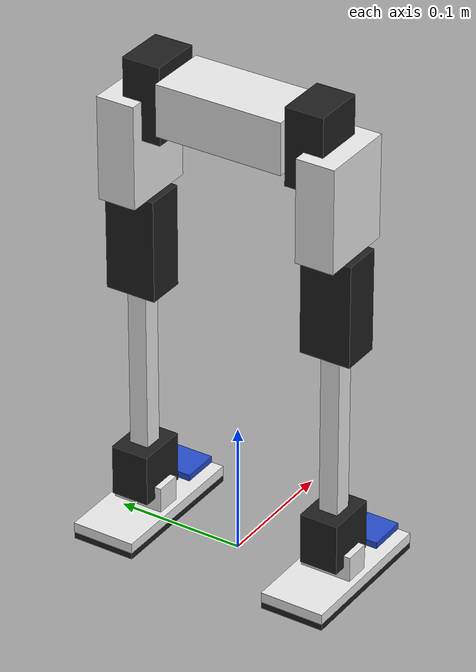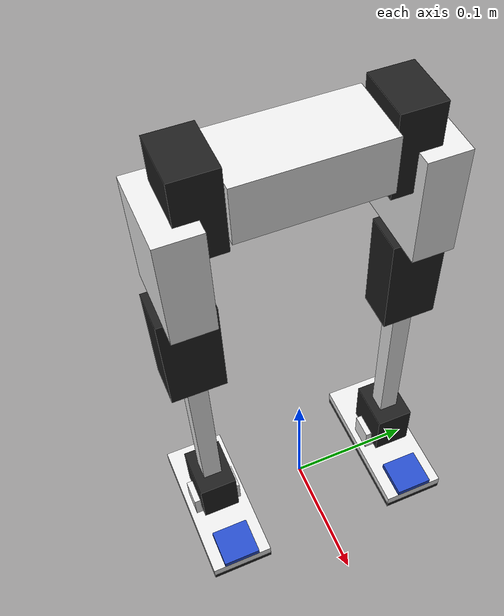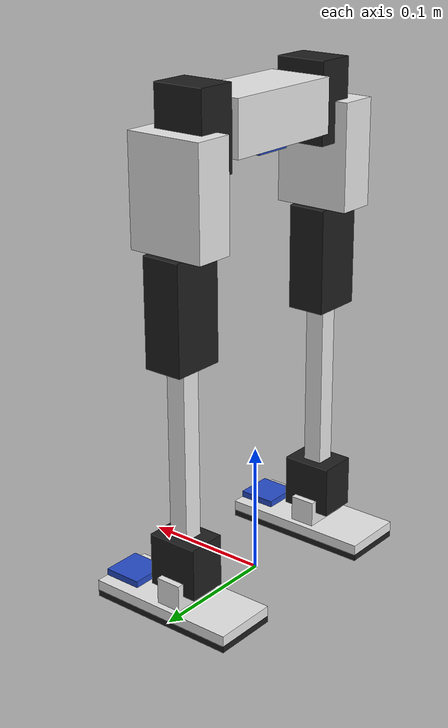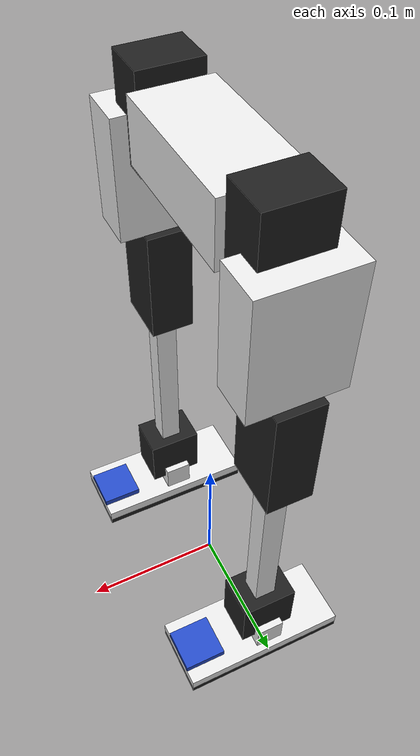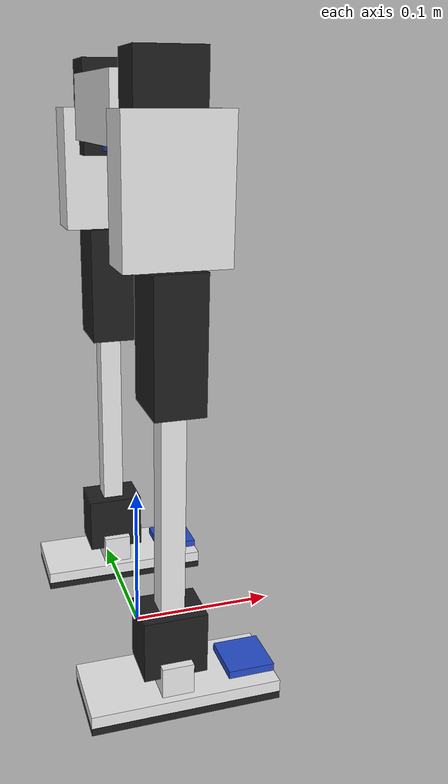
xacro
<?xml version="1.0"?>
<robot xmlns:xacro="http://www.ros.org/wiki/xacro">

  <xacro:include filename="$(find robotv1_description)/urdf/leg.xacro"/>
  <xacro:include filename="$(find robotv1_description)/urdf/lower_body.gazebo"/>

  <xacro:property name="lx_pelvis" value="0.05"/>
  <xacro:property name="ly_pelvis" value="0.10"/>
  <xacro:property name="lz_pelvis" value="0.04"/>
  <xacro:property name="lx_imu_link" value="0.03"/>
  <xacro:property name="ly_imu_link" value="0.03"/>
  <xacro:property name="lz_imu_link" value="0.005"/>

  <xacro:property name="pos_pelvis" value="${lz_u1 + lz_u2+ lz_l0 + lz_l1 + lz_l2/2 + lz_l3 + lz_l4}"/>

  <link name="dummy" />
  <joint name="dummy_to_pelvis" type="fixed">
    <origin xyz="0 0 ${pos_pelvis}" rpy="0 0 0"/>
    <parent link="dummy" />
    <child link="pelvis" />
  </joint>

  <link name="pelvis" >
    <visual>
      <origin xyz="0 0 0" rpy="0 0 0" />
      <geometry>
        <box size="${lx_pelvis} ${ly_pelvis} ${lz_pelvis}"/>
      </geometry>
      <material name="white"/>
    </visual>
    <inertial>
      <origin xyz="0 0 0" rpy="0 0 0" />
      <xacro:box_inertia lenx="${lx_pelvis}" leny="${ly_pelvis}" lenz="${lz_pelvis}"/>
    </inertial>
    <collision>
      <origin xyz="0 0 0" rpy="0 0 0" />
      <geometry>
        <box size="${lx_pelvis} ${ly_pelvis} ${lz_pelvis}"/>
      </geometry>
    </collision>
  </link>

  <joint name="pelvis_to_imu_link" type="fixed">
    <origin xyz="0 0 ${-lz_pelvis/2.0}" rpy="0 0 0" />
    <parent link="pelvis"/>
    <child link="imu_link_pelvis"/>
  </joint>

  <link name="imu_link_pelvis" >
    <visual>
      <origin xyz="0 0 ${-lz_imu_link/2.0}" rpy="0 0 0" />
      <geometry>
        <box size="${lx_imu_link} ${ly_imu_link} ${lz_imu_link}"/>
      </geometry>
      <material name="blue"/>
    </visual>
    <inertial>
      <origin xyz="0 0 ${lz_imu_link/2.0}" rpy="0 0 0" />
      <xacro:box_inertia lenx="${lx_imu_link}" leny="${ly_imu_link}" lenz="${lz_imu_link}"/>
    </inertial>
    <collision>
      <origin xyz="0 0 0" rpy="0 0 0" />
      <geometry>
        <box size="${lx_imu_link} ${ly_imu_link} ${lz_imu_link}"/>
      </geometry>
    </collision>
  </link>

  <xacro:leg prefix="LLEG" reflect="1" />
  <xacro:leg prefix="RLEG" reflect="-1" />

</robot>

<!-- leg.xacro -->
<!-- Revolute-Revolute Manipulator -->
<robot xmlns:xacro="http://www.ros.org/wiki/xacro" >
  <!--Constant for the robotv1-->
  <xacro:property name="joint_friction" value="0.015"/>
  <xacro:property name="joint_damping" value="0.03"/>
  <xacro:property name="joint_effort" value="10.0"/>
  <xacro:property name="joint_vel" value="6.0"/>

  <xacro:property name="lx_u0" value="0.04"/>
  <xacro:property name="ly_u0" value="0.03"/>
  <xacro:property name="lz_u0" value="0.06"/>

  <xacro:property name="lx_u1" value="0.06"/>
  <xacro:property name="ly_u1" value="0.03"/>
  <xacro:property name="lz_u1" value="0.08"/>

  <xacro:property name="lx_u2" value="0.03"/>
  <xacro:property name="ly_u2" value="0.04"/>
  <xacro:property name="lz_u2" value="0.08"/>

  <xacro:property name="lx_l0" value="0.015"/>
  <xacro:property name="ly_l0" value="0.015"/>
  <xacro:property name="lz_l0" value="0.13"/>

  <xacro:property name="lx_l1" value="0.04"/>
  <xacro:property name="ly_l1" value="0.03"/>
  <xacro:property name="lz_l1" value="0.04"/>

  <xacro:property name="lx_l2" value="0.02"/>
  <xacro:property name="ly_l2" value="0.04"/>
  <xacro:property name="lz_l2" value="0.02"/>

  <xacro:property name="lx_l3" value="0.12"/>
  <xacro:property name="ly_l3" value="0.05"/>
  <xacro:property name="lz_l3" value="0.008"/>

  <xacro:property name="lx_l4" value="0.12"/>
  <xacro:property name="ly_l4" value="0.05"/>
  <xacro:property name="lz_l4" value="0.005"/>

  <xacro:property name="lx_imu_link" value="0.03"/>
  <xacro:property name="ly_imu_link" value="0.03"/>
  <xacro:property name="lz_imu_link" value="0.005"/>

  <xacro:include filename="$(find robotv1_description)/urdf/leg.gazebo" />
  <xacro:include filename="$(find robotv1_description)/urdf/utilities.xacro"/>

  <xacro:macro name="leg" params="prefix reflect" >
    <joint name="${prefix}_H0" type="revolute" >
      <parent link="pelvis"/>
      <child link="${prefix}_u0"/>
      <origin xyz="0 ${ly_pelvis*reflect/2} 0"/>
      <axis xyz="0 1 0"/>
      <dynamics damping="${joint_damping}" friction="${joint_friction}"/>
      <limit effort="${joint_effort}" velocity="${joint_vel}" lower="${-pi/2}" upper="${pi/2}" />
    </joint>

    <transmission name="${prefix}_H0_tran">
      <type>transmission_interface/SimpleTransmission</type>
      <joint name="${prefix}_H0">
        <hardwareInterface>hardware_interface/EffortJointInterface</hardwareInterface>
      </joint>
      <actuator name="${prefix}_H0_motor">
        <hardwareInterface>hardware_interface/EffortJointInterface</hardwareInterface>
        <mechanicalReduction>1</mechanicalReduction>
      </actuator>
    </transmission>

    <link name="${prefix}_u0" >
      <visual>
        <origin xyz="0 ${ly_u0*reflect/2} 0" rpy="0 0 0"/>
        <geometry>
          <box size="${lx_u0} ${ly_u0} ${lz_u0}"/>
        </geometry>
        <material name="black"/>
      </visual>
      <inertial>
        <origin xyz="0 ${ly_u0*reflect/2} 0" rpy="0 0 0"/>
        <xacro:box_inertia  lenx="${lx_u0}" leny="${ly_u0}" lenz="${lz_u0}" />
      </inertial>
      <collision>
        <origin xyz="0 ${ly_u0*reflect/2} 0" rpy="0 0 0"/>
        <geometry>
          <box size="${lx_u0} ${ly_u0} ${lz_u0}"/>
        </geometry>
      </collision>
    </link>

    <joint name="${prefix}_H1" type="revolute" >
       <parent link="${prefix}_u0"/>
       <child link="${prefix}_u1"/>
       <origin xyz= "0 ${ly_u0*reflect} 0"/>
       <axis xyz="1 0 0"/>
       <dynamics damping="${joint_damping}" friction="${joint_friction}"/>
       <limit effort="${joint_effort}" velocity="${joint_vel}" lower="${-pi/4}" upper="${pi/4}" />
    </joint>
    <transmission name="${prefix}_H1_tran">
      <type>transmission_interface/SimpleTransmission</type>
      <joint name="${prefix}_H1">
        <hardwareInterface>hardware_interface/EffortJointInterface</hardwareInterface>
      </joint>
      <actuator name="${prefix}_H1_motor">
        <hardwareInterface>hardware_interface/EffortJointInterface</hardwareInterface>
        <mechanicalReduction>1</mechanicalReduction>
      </actuator>
    </transmission>

    <link name="${prefix}_u1" >
      <visual>
        <origin xyz="0 0 ${-lz_u1/2 }" rpy="0 0 0"/>
        <geometry>
          <box size="${lx_u1} ${ly_u1} ${lz_u1}"/>
        </geometry>
        <material name="white"/>
      </visual>
      <inertial>
        <origin xyz="0 0 ${-lz_u1/2 }" rpy="0 0 0"/>
        <xacro:box_inertia  lenx="${lx_u1}" leny="${ly_u1}" lenz="${lz_u1}" />
      </inertial>
      <collision>
        <origin xyz="0 0 ${-1*lz_u1/2 }" rpy="0 0 0"/>
        <geometry>
          <box size="${lx_u1} ${ly_u1} ${lz_u1}"/>
        </geometry>
      </collision>
    </link>

    <joint name="${prefix}_H2" type="revolute" >
      <parent link="${prefix}_u1"/>
      <child link="${prefix}_u2"/>
      <origin xyz="0 0 ${-lz_u1}"/>
      <axis xyz="0 0 1"/>
      <dynamics damping="${joint_damping}" friction="${joint_friction}"/>
      <limit effort="${joint_effort}" velocity="${joint_vel}" lower="${-pi/4}" upper="${pi/4}" />
    </joint>

    <transmission name="${prefix}_H2_tran">
      <type>transmission_interface/SimpleTransmission</type>
      <joint name="${prefix}_H2">
        <hardwareInterface>hardware_interface/EffortJointInterface</hardwareInterface>
      </joint>
      <actuator name="${prefix}_H2_motor">
        <hardwareInterface>hardware_interface/EffortJointInterface</hardwareInterface>
        <mechanicalReduction>1</mechanicalReduction>
      </actuator>
    </transmission>

    <link name="${prefix}_u2" >
      <visual>
        <origin xyz="0 0 ${-lz_u2/2}" rpy="0 0 0"/>
        <geometry>
          <box size="${lx_u2} ${ly_u2} ${lz_u2}"/>
        </geometry>
        <material name="black"/>
      </visual>
      <inertial>
        <origin xyz="0 0 ${-lz_u2/2}" rpy="0 0 0"/>
        <xacro:box_inertia  lenx="${lx_u2}" leny="${ly_u2}" lenz="${lz_u2}" />
      </inertial>
      <collision>
        <origin xyz="0 0 ${-lz_u2/2}" rpy="0 0 0"/>
        <geometry>
          <box size="${lx_u2} ${ly_u2} ${lz_u2}"/>
        </geometry>
      </collision>
    </link>

    <joint name="${prefix}_K0" type="revolute" >
      <parent link="${prefix}_u2"/>
      <child link="${prefix}_l0"/>
      <origin xyz="0 0 ${-lz_u2}"/>
      <axis xyz="0 1 0"/>
      <dynamics damping="${joint_damping}" friction="${joint_friction}"/>
      <limit effort="${joint_effort}" velocity="${joint_vel}" lower="0" upper="${7*pi/8}" />
    </joint>

    <transmission name="${prefix}_K0_tran">
      <type>transmission_interface/SimpleTransmission</type>
      <joint name="${prefix}_K0">
        <hardwareInterface>hardware_interface/EffortJointInterface</hardwareInterface>
      </joint>
      <actuator name="${prefix}_K0_motor">
        <hardwareInterface>hardware_interface/EffortJointInterface</hardwareInterface>
        <mechanicalReduction>1</mechanicalReduction>
      </actuator>
    </transmission>

    <link name="${prefix}_l0" >
      <visual>
        <origin xyz="0 0 ${-lz_l0/2}" rpy="0 0 0"/>
        <geometry>
          <box size="${lx_l0} ${ly_l0} ${lz_l0}"/>
        </geometry>
        <material name="white"/>
      </visual>
      <inertial>
        <origin xyz="0 0 ${-lz_l0/2}" rpy="0 0 0"/>
        <xacro:box_inertia  lenx="${lx_l0}" leny="${ly_l0}" lenz="${lz_l0}" />
      </inertial>
      <collision>
       <origin xyz="0 0 ${-lz_l0/2}" rpy="0 0 0"/>
       <geometry>
         <box size="${lx_l0} ${ly_l0} ${lz_l0}"/>
       </geometry>
      </collision>
    </link>

    <joint name="${prefix}_A0" type="revolute" >
      <parent link="${prefix}_l0"/>
      <child link="${prefix}_l1"/>
      <origin xyz="0 0 ${-lz_l0}" rpy="0 0 0"/>
      <axis xyz="0 1 0"/>
      <dynamics damping="${joint_damping}" friction="${joint_friction}"/>
      <limit effort="${joint_effort}" velocity="${joint_vel}" lower="${-pi/2}" upper="${pi/2}" />
    </joint>

    <transmission name="${prefix}_A0_tran">
      <type>transmission_interface/SimpleTransmission</type>
      <joint name="${prefix}_A0">
        <hardwareInterface>hardware_interface/EffortJointInterface</hardwareInterface>
      </joint>
      <actuator name="${prefix}_A0_motor">
        <hardwareInterface>hardware_interface/EffortJointInterface</hardwareInterface>
        <mechanicalReduction>1</mechanicalReduction>
      </actuator>
    </transmission>

    <link name="${prefix}_l1" >
      <visual>
      <origin xyz="0 0 ${-lz_l1/2}" rpy="0 0 0"/>
        <geometry>
          <box size="${lx_l1} ${ly_l1} ${lz_l1}"/>
        </geometry>
        <material name="black"/>
      </visual>
      <inertial>
        <origin xyz="0 0 ${-lz_l1/2}" rpy="0 0 0"/>
        <xacro:box_inertia  lenx="${lx_l1}" leny="${ly_l1}" lenz="${lz_l1}" />
      </inertial>
      <collision>
        <origin xyz="0 0 ${-lz_l1/2}" rpy="0 0 0"/>
        <geometry>
          <box size="${lx_l1} ${ly_l1} ${lz_l1}"/>
        </geometry>
      </collision>
    </link>

    <joint name="${prefix}_A1" type="revolute" >
      <parent link="${prefix}_l1"/>
      <child link="${prefix}_l2"/>
      <origin xyz="0 0 ${-lz_l1}"/>
      <axis xyz="1 0 0"/>
      <dynamics damping="${joint_damping}" friction="${joint_friction}"/>
      <limit effort="${joint_effort}" velocity="${joint_vel}" lower="${-pi/4}" upper="${pi/4}" />
    </joint>

    <transmission name="${prefix}_A1_tran">
      <type>transmission_interface/SimpleTransmission</type>
      <joint name="${prefix}_A1">
        <hardwareInterface>hardware_interface/EffortJointInterface</hardwareInterface>
      </joint>
      <actuator name="${prefix}_A1_motor">
        <hardwareInterface>hardware_interface/EffortJointInterface</hardwareInterface>
        <mechanicalReduction>1</mechanicalReduction>
      </actuator>
    </transmission>

    <link name="${prefix}_l2" >
      <visual>
        <origin xyz="0 0 0" rpy="0 0 0"/>
        <geometry>
          <box size="${lx_l2} ${ly_l2} ${lz_l2}"/>
        </geometry>
        <material name="white"/>
      </visual>
      <inertial>
        <origin xyz="0 0 0" rpy="0 0 0"/>
        <xacro:box_inertia  lenx="${lx_l2}" leny="${ly_l2}" lenz="${lz_l2}" />
      </inertial>
      <collision>
        <origin xyz="0 0 0" rpy="0 0 0"/>
        <geometry>
          <box size="${lx_l2} ${ly_l2} ${lz_l2}"/>
        </geometry>
      </collision>
    </link>

    <joint name="${prefix}_l3_fix" type="fixed" >
      <parent link="${prefix}_l2"/>
      <child link="${prefix}_l3"/>
      <origin xyz="${lx_l2/4} 0 ${-lz_l2/2}"/>
    </joint>

    <link name="${prefix}_l3" >
      <visual>
        <origin xyz="0 0 ${-lz_l3/2}" rpy="0 0 0"/>
        <geometry>
          <box size="${lx_l3} ${ly_l3} ${lz_l3}"/>
        </geometry>
        <material name="white"/>
      </visual>
      <inertial>
        <origin xyz="0 0 ${-lz_l3/2}" rpy="0 0 0"/>
        <xacro:box_inertia  lenx="${lx_l3}" leny="${ly_l3}" lenz="${lz_l3}" />
      </inertial>
      <collision>
        <origin xyz="0 0 ${-lz_l3/2}" rpy="0 0 0"/>
        <geometry>
           <box size="${lx_l3} ${ly_l3} ${lz_l3}"/>
        </geometry>
      </collision>
    </link>

    <joint name="${prefix}_ft_sensor" type="revolute" >
      <parent link="${prefix}_l3"/>
      <child link="${prefix}_l4"/>
      <origin xyz="0 0 ${-lz_l3}"/>
      <limit effort="10.0" velocity="1.0" upper="0.0" lower="0.0"/>
    </joint>
    <transmission name="${prefix}_ft_sensor_tran">
      <type>transmission_interface/SimpleTransmission</type>
      <joint name="${prefix}_ft_sensor">
        <hardwareInterface>hardware_interface/EffortJointInterface</hardwareInterface>
      </joint>
      <actuator name="${prefix}_ft_sensor_motor">
        <hardwareInterface>hardware_interface/EffortJointInterface</hardwareInterface>
        <mechanicalReduction>1</mechanicalReduction>
      </actuator>
    </transmission>

    <link name="${prefix}_l4" >
      <visual>
        <origin xyz="0 0 ${-lz_l4/2}" rpy="0 0 0"/>
        <geometry>
          <box size="${lx_l4} ${ly_l4} ${lz_l4}"/>
        </geometry>
        <material name="black"/>
      </visual>
      <inertial>
        <origin xyz="0 0 ${-lz_l4/2}" rpy="0 0 0"/>
        <xacro:box_inertia  lenx="${lx_l4}" leny="${ly_l4}" lenz="${lz_l4}" />
      </inertial>
      <collision>
        <origin xyz="0 0 ${-lz_l4/2}" rpy="0 0 0"/>
        <geometry>
           <box size="${lx_l4} ${ly_l4} ${lz_l4}"/>
        </geometry>
      </collision>
    </link>

    <joint name="${prefix}_l3_to_imu_link" type="fixed">
      <origin xyz="${lx_l3/2-lx_imu_link/2} 0 0" rpy="0 0 0" />
      <parent link="${prefix}_l3"/>
      <child link="${prefix}_imu_link"/>
    </joint>

    <link name="${prefix}_imu_link" >
      <visual>
        <origin xyz="0 0 ${lz_imu_link/2.0}" rpy="0 0 0" />
        <geometry>
          <box size="${lx_imu_link} ${ly_imu_link} ${lz_imu_link}"/>
        </geometry>
        <material name="blue"/>
      </visual>
      <inertial>
        <origin xyz="0 0 ${lz_imu_link/2.0}" rpy="0 0 0" />
        <xacro:box_inertia lenx="${lx_imu_link}" leny="${ly_imu_link}" lenz="${lz_imu_link}"/>
      </inertial>
      <collision>
        <origin xyz="0 0 0" rpy="0 0 0" />
        <geometry>
          <box size="${lx_imu_link} ${ly_imu_link} ${lz_imu_link}"/>
        </geometry>
      </collision>
    </link>

   <xacro:leg_gazebo_reference prefix="${prefix}"/>
 </xacro:macro>

</robot>

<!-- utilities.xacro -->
<robot xmlns:xacro="http://www.ros.org/wiki/xacro">
  <xacro:property name="density" value="1700"/>
  <xacro:macro name="box_inertia" params="lenx leny lenz">
    <xacro:property name="mass" value="${density * lenx * leny * lenz}"/>
    <mass value="${mass}" />
    <inertia
      ixx="${mass*(lenz*lenz+leny*leny)/12.0}" ixy="0.0" ixz="0.0"
      iyy="${mass*(lenz*lenz+lenx*lenx)/12.0}" iyz="0.0"
      izz="${mass*(lenx*lenx+leny*leny)/12.0}" />
  </xacro:macro>
</robot>
